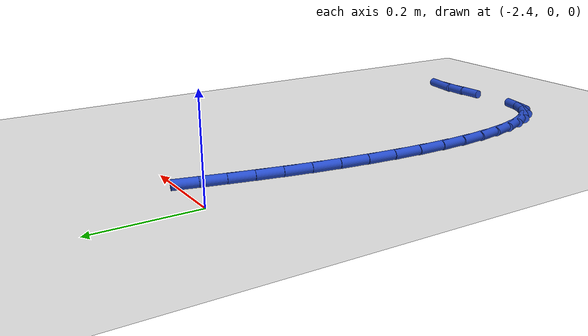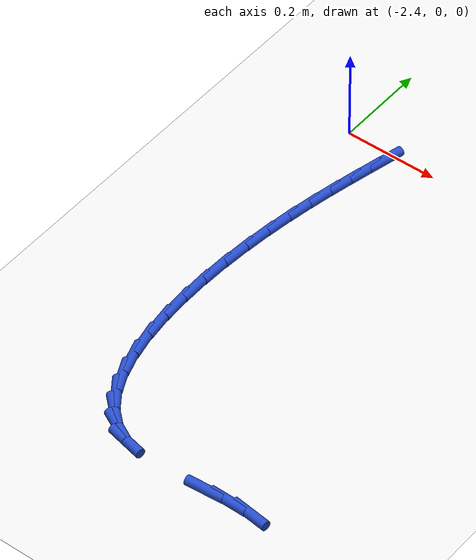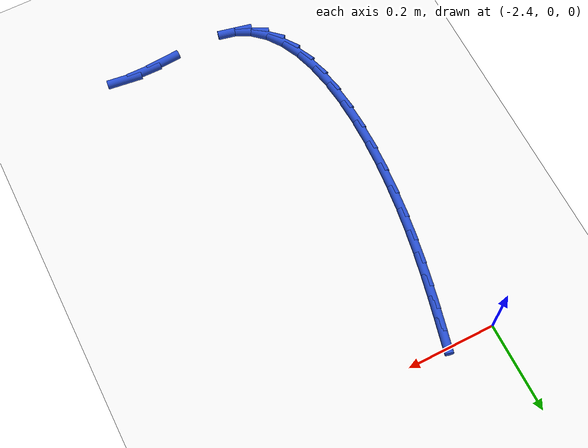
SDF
<sdf version="1.6">
 <world name="default">
  <model name="ground_plane">
   <static>1</static>
   <link name="link">
    <collision name="collision">
     <geometry><plane><normal>0 0 1</normal><size>100 100</size></plane></geometry>
     <surface><friction><ode><mu>100</mu><mu2>50</mu2></ode></friction></surface>
    </collision>
    <visual name="visual">
     <cast_shadows>0</cast_shadows>
     <geometry><plane><normal>0 0 1</normal><size>100 100</size></plane></geometry>
     <material>
      <script><uri>file://media/materials/scripts/gazebo.material</uri><name>Gazebo/WhiteGlow</name></script>
     </material>
    </visual>
   </link>
  </model>
  <model name="line">
   <link name="link_85">
    <pose>-2.296473243069731 -0.024916781543851213 0.01 0 1.57 1.3337828613807026</pose>
    <collision name="collision">
     <geometry><cylinder><radius>0.01</radius><length>0.08</length></cylinder></geometry>
    </collision>
    <visual name="visual">
     <material>
      <script><name>Gazebo/Blue</name><uri>file://media/materials/scripts/gazebo.material</uri></script>
     </material>
     <geometry><cylinder><radius>0.01</radius><length>0.08</length></cylinder></geometry>
    </visual>
   </link>
   <link name="link_86">
    <pose>-2.307765656880007 -0.07166587973596174 0.01 0 1.57 1.342148138289531</pose>
    <collision name="collision">
     <geometry><cylinder><radius>0.01</radius><length>0.08</length></cylinder></geometry>
    </collision>
    <visual name="visual">
     <material>
      <script><name>Gazebo/Blue</name><uri>file://media/materials/scripts/gazebo.material</uri></script>
     </material>
     <geometry><cylinder><radius>0.01</radius><length>0.08</length></cylinder></geometry>
    </visual>
   </link>
   <link name="link_87">
    <pose>-2.3189704963573914 -0.11981361537253958 0.01 0 1.57 1.3569016838507193</pose>
    <collision name="collision">
     <geometry><cylinder><radius>0.01</radius><length>0.08</length></cylinder></geometry>
    </collision>
    <visual name="visual">
     <material>
      <script><name>Gazebo/Blue</name><uri>file://media/materials/scripts/gazebo.material</uri></script>
     </material>
     <geometry><cylinder><radius>0.01</radius><length>0.08</length></cylinder></geometry>
    </visual>
   </link>
   <link name="link_88">
    <pose>-2.3297865397689765 -0.16960724268652178 0.01 0 1.57 1.3773352327388828</pose>
    <collision name="collision">
     <geometry><cylinder><radius>0.01</radius><length>0.08</length></cylinder></geometry>
    </collision>
    <visual name="visual">
     <material>
      <script><name>Gazebo/Blue</name><uri>file://media/materials/scripts/gazebo.material</uri></script>
     </material>
     <geometry><cylinder><radius>0.01</radius><length>0.08</length></cylinder></geometry>
    </visual>
   </link>
   <link name="link_89">
    <pose>-2.339912565381854 -0.22129401591084624 0.01 0 1.57 1.4026920736908022</pose>
    <collision name="collision">
     <geometry><cylinder><radius>0.01</radius><length>0.08</length></cylinder></geometry>
    </collision>
    <visual name="visual">
     <material>
      <script><name>Gazebo/Blue</name><uri>file://media/materials/scripts/gazebo.material</uri></script>
     </material>
     <geometry><cylinder><radius>0.01</radius><length>0.08</length></cylinder></geometry>
    </visual>
   </link>
   <link name="link_90">
    <pose>-2.3490473514631156 -0.2751211892784481 0.01 0 1.57 1.4320010004052124</pose>
    <collision name="collision">
     <geometry><cylinder><radius>0.01</radius><length>0.08</length></cylinder></geometry>
    </collision>
    <visual name="visual">
     <material>
      <script><name>Gazebo/Blue</name><uri>file://media/materials/scripts/gazebo.material</uri></script>
     </material>
     <geometry><cylinder><radius>0.01</radius><length>0.08</length></cylinder></geometry>
    </visual>
   </link>
   <link name="link_91">
    <pose>-2.356886053071452 -0.3312347613927399 0.01 0 1.57 1.4637763849282215</pose>
    <collision name="collision">
     <geometry><cylinder><radius>0.01</radius><length>0.08</length></cylinder></geometry>
    </collision>
    <visual name="visual">
     <material>
      <script><name>Gazebo/Blue</name><uri>file://media/materials/scripts/gazebo.material</uri></script>
     </material>
     <geometry><cylinder><radius>0.01</radius><length>0.08</length></cylinder></geometry>
    </visual>
   </link>
   <link name="link_92">
    <pose>-2.3630979326336345 -0.3890571250208498 0.01 0 1.57 1.4985629187081733</pose>
    <collision name="collision">
     <geometry><cylinder><radius>0.01</radius><length>0.08</length></cylinder></geometry>
    </collision>
    <visual name="visual">
     <material>
      <script><name>Gazebo/Blue</name><uri>file://media/materials/scripts/gazebo.material</uri></script>
     </material>
     <geometry><cylinder><radius>0.01</radius><length>0.08</length></cylinder></geometry>
    </visual>
   </link>
   <link name="link_93">
    <pose>-2.3673409849531755 -0.44769578342877503 0.01 0 1.57 1.5378141791507884</pose>
    <collision name="collision">
     <geometry><cylinder><radius>0.01</radius><length>0.08</length></cylinder></geometry>
    </collision>
    <visual name="visual">
     <material>
      <script><name>Gazebo/Blue</name><uri>file://media/materials/scripts/gazebo.material</uri></script>
     </material>
     <geometry><cylinder><radius>0.01</radius><length>0.08</length></cylinder></geometry>
    </visual>
   </link>
   <link name="link_94">
    <pose>-2.369273158529804 -0.5062569458584008 0.01 0 1.57 -1.5582816437914526</pose>
    <collision name="collision">
     <geometry><cylinder><radius>0.01</radius><length>0.08</length></cylinder></geometry>
    </collision>
    <visual name="visual">
     <material>
      <script><name>Gazebo/Blue</name><uri>file://media/materials/scripts/gazebo.material</uri></script>
     </material>
     <geometry><cylinder><radius>0.01</radius><length>0.08</length></cylinder></geometry>
    </visual>
   </link>
   <link name="link_95">
    <pose>-2.368552401863251 -0.5638468215516086 0.01 0 1.57 -1.5042147302932989</pose>
    <collision name="collision">
     <geometry><cylinder><radius>0.01</radius><length>0.08</length></cylinder></geometry>
    </collision>
    <visual name="visual">
     <material>
      <script><name>Gazebo/Blue</name><uri>file://media/materials/scripts/gazebo.material</uri></script>
     </material>
     <geometry><cylinder><radius>0.01</radius><length>0.08</length></cylinder></geometry>
    </visual>
   </link>
   <link name="link_96">
    <pose>-2.36483666345324 -0.6195716197502833 0.01 0 1.57 -1.4384182870039073</pose>
    <collision name="collision">
     <geometry><cylinder><radius>0.01</radius><length>0.08</length></cylinder></geometry>
    </collision>
    <visual name="visual">
     <material>
      <script><name>Gazebo/Blue</name><uri>file://media/materials/scripts/gazebo.material</uri></script>
     </material>
     <geometry><cylinder><radius>0.01</radius><length>0.08</length></cylinder></geometry>
    </visual>
   </link>
   <link name="link_97">
    <pose>-2.3577838917995027 -0.6725375496963091 0.01 0 1.57 -1.3565114236638285</pose>
    <collision name="collision">
     <geometry><cylinder><radius>0.01</radius><length>0.08</length></cylinder></geometry>
    </collision>
    <visual name="visual">
     <material>
      <script><name>Gazebo/Blue</name><uri>file://media/materials/scripts/gazebo.material</uri></script>
     </material>
     <geometry><cylinder><radius>0.01</radius><length>0.08</length></cylinder></geometry>
    </visual>
   </link>
   <link name="link_98">
    <pose>-2.3470520354017665 -0.7218508206315696 0.01 0 1.57 -1.2524528807500066</pose>
    <collision name="collision">
     <geometry><cylinder><radius>0.01</radius><length>0.08</length></cylinder></geometry>
    </collision>
    <visual name="visual">
     <material>
      <script><name>Gazebo/Blue</name><uri>file://media/materials/scripts/gazebo.material</uri></script>
     </material>
     <geometry><cylinder><radius>0.01</radius><length>0.08</length></cylinder></geometry>
    </visual>
   </link>
   <link name="link_99">
    <pose>-2.332299042759759 -0.7666176417979496 0.01 0 1.57 -1.1183401011526795</pose>
    <collision name="collision">
     <geometry><cylinder><radius>0.01</radius><length>0.08</length></cylinder></geometry>
    </collision>
    <visual name="visual">
     <material>
      <script><name>Gazebo/Blue</name><uri>file://media/materials/scripts/gazebo.material</uri></script>
     </material>
     <geometry><cylinder><radius>0.01</radius><length>0.08</length></cylinder></geometry>
    </visual>
   </link>
   <link name="link_100">
    <pose>-2.3131828623732096 -0.8059442224373312 0.01 0 1.57 -0.9454414276396385</pose>
    <collision name="collision">
     <geometry><cylinder><radius>0.01</radius><length>0.08</length></cylinder></geometry>
    </collision>
    <visual name="visual">
     <material>
      <script><name>Gazebo/Blue</name><uri>file://media/materials/scripts/gazebo.material</uri></script>
     </material>
     <geometry><cylinder><radius>0.01</radius><length>0.08</length></cylinder></geometry>
    </visual>
   </link>
   <link name="link_101">
    <pose>-2.2893614427418467 -0.8389367717915993 0.01 0 1.57 -0.728644463542146</pose>
    <collision name="collision">
     <geometry><cylinder><radius>0.01</radius><length>0.08</length></cylinder></geometry>
    </collision>
    <visual name="visual">
     <material>
      <script><name>Gazebo/Blue</name><uri>file://media/materials/scripts/gazebo.material</uri></script>
     </material>
     <geometry><cylinder><radius>0.01</radius><length>0.08</length></cylinder></geometry>
    </visual>
   </link>
   <link name="link_102">
    <pose>-2.260492732365398 -0.8647014991026377 0.01 0 1.57 -0.47558048859443136</pose>
    <collision name="collision">
     <geometry><cylinder><radius>0.01</radius><length>0.08</length></cylinder></geometry>
    </collision>
    <visual name="visual">
     <material>
      <script><name>Gazebo/Blue</name><uri>file://media/materials/scripts/gazebo.material</uri></script>
     </material>
     <geometry><cylinder><radius>0.01</radius><length>0.08</length></cylinder></geometry>
    </visual>
   </link>
   <link name="link_103">
    <pose>-2.226234679743591 -0.8823446136123303 0.01 0 1.57 -0.21810227469572804</pose>
    <collision name="collision">
     <geometry><cylinder><radius>0.01</radius><length>0.08</length></cylinder></geometry>
    </collision>
    <visual name="visual">
     <material>
      <script><name>Gazebo/Blue</name><uri>file://media/materials/scripts/gazebo.material</uri></script>
     </material>
     <geometry><cylinder><radius>0.01</radius><length>0.08</length></cylinder></geometry>
    </visual>
   </link>
   <link name="link_107">
    <pose>-2.044555840037642 -0.8851831295572073 0.01 0 1.57 0.06939410914265323</pose>
    <collision name="collision">
     <geometry><cylinder><radius>0.01</radius><length>0.08</length></cylinder></geometry>
    </collision>
    <visual name="visual">
     <material>
      <script><name>Gazebo/Blue</name><uri>file://media/materials/scripts/gazebo.material</uri></script>
     </material>
     <geometry><cylinder><radius>0.01</radius><length>0.08</length></cylinder></geometry>
    </visual>
   </link>
   <link name="link_108">
    <pose>-1.9951174744495233 -0.8817468806474117 0.01 0 1.57 -0.010685669683298408</pose>
    <collision name="collision">
     <geometry><cylinder><radius>0.01</radius><length>0.08</length></cylinder></geometry>
    </collision>
    <visual name="visual">
     <material>
      <script><name>Gazebo/Blue</name><uri>file://media/materials/scripts/gazebo.material</uri></script>
     </material>
     <geometry><cylinder><radius>0.01</radius><length>0.08</length></cylinder></geometry>
    </visual>
   </link>
   <link name="link_109">
    <pose>-1.9471795259686935 -0.8822591492278673 0.01 0 1.57 -0.12677126918705947</pose>
    <collision name="collision">
     <geometry><cylinder><radius>0.01</radius><length>0.08</length></cylinder></geometry>
    </collision>
    <visual name="visual">
     <material>
      <script><name>Gazebo/Blue</name><uri>file://media/materials/scripts/gazebo.material</uri></script>
     </material>
     <geometry><cylinder><radius>0.01</radius><length>0.08</length></cylinder></geometry>
    </visual>
   </link>
  </model>
 </world>
</sdf>
